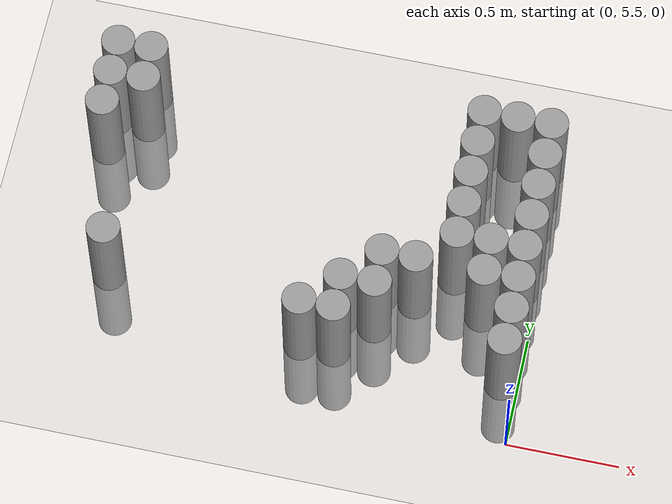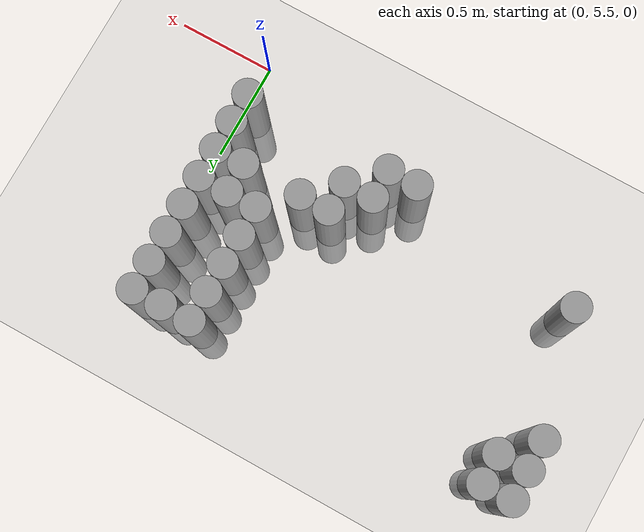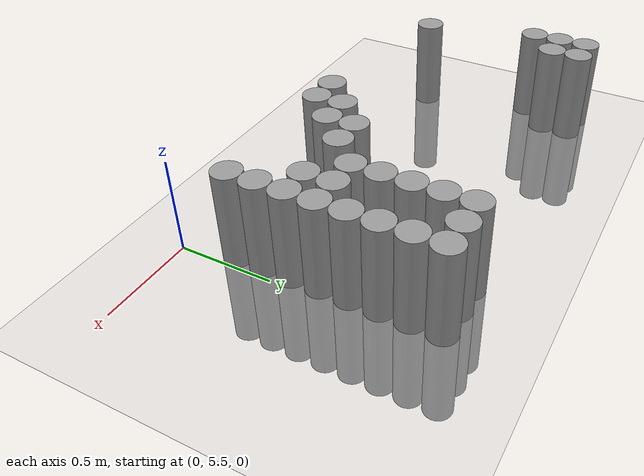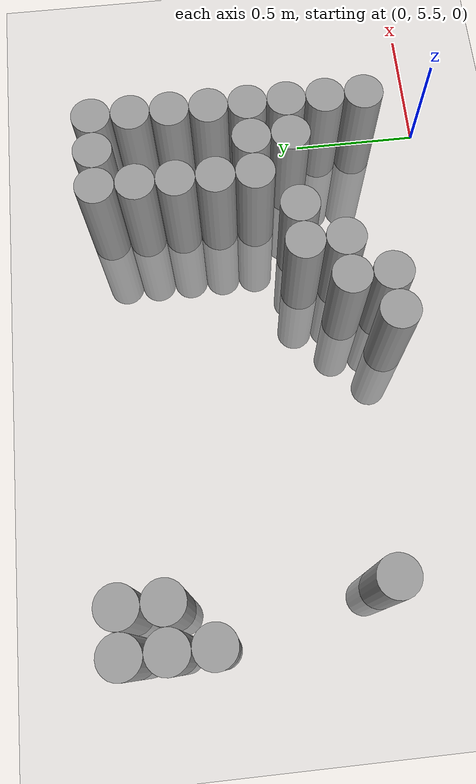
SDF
<sdf version="1.6">
 <world name="default">
  <model name="ground_plane">
   <static>1</static>
   <static>1</static>
   <link name="link">
    <collision name="collision">
     <geometry><plane><normal>0 0 1</normal><size>100 100</size></plane></geometry>
     <surface><friction><ode><mu>100</mu><mu2>50</mu2></ode></friction></surface>
    </collision>
    <visual name="visual">
     <cast_shadows>0</cast_shadows>
     <geometry><plane><normal>0 0 1</normal><size>100 100</size></plane></geometry>
     <material>
      <script><uri>file://media/materials/scripts/gazebo.material</uri><name>Gazebo/Grey</name></script>
     </material>
    </visual>
   </link>
  </model>
  <model name="unit_cylinder_161">
   <static>1</static>
   <pose>-2.025000 6.525000 0.000000 0.000000 0.000000 0.000000</pose>
   <link name="link">
    <inertial>
     <mass>1</mass>
     <inertia><ixx>0.145833</ixx><ixy>0</ixy><ixz>0</ixz><iyy>0.145833</iyy><iyz>0</iyz><izz>0.125</izz></inertia>
    </inertial>
    <collision name="collision">
     <geometry><cylinder><radius>0.075000</radius><length>1</length></cylinder></geometry>
    </collision>
    <visual name="visual">
     <geometry><cylinder><radius>0.075000</radius><length>1</length></cylinder></geometry>
     <material>
      <script><name>Gazebo/Grey</name><uri>file://media/materials/scripts/gazebo.material</uri></script>
     </material>
    </visual>
   </link>
  </model>
  <model name="unit_cylinder_162">
   <static>1</static>
   <pose>-2.025000 6.675000 0.000000 0.000000 0.000000 0.000000</pose>
   <link name="link">
    <inertial>
     <mass>1</mass>
     <inertia><ixx>0.145833</ixx><ixy>0</ixy><ixz>0</ixz><iyy>0.145833</iyy><iyz>0</iyz><izz>0.125</izz></inertia>
    </inertial>
    <collision name="collision">
     <geometry><cylinder><radius>0.075000</radius><length>1</length></cylinder></geometry>
    </collision>
    <visual name="visual">
     <geometry><cylinder><radius>0.075000</radius><length>1</length></cylinder></geometry>
     <material>
      <script><name>Gazebo/Grey</name><uri>file://media/materials/scripts/gazebo.material</uri></script>
     </material>
    </visual>
   </link>
  </model>
  <model name="unit_cylinder_163">
   <static>1</static>
   <pose>-2.025000 6.825000 0.000000 0.000000 0.000000 0.000000</pose>
   <link name="link">
    <inertial>
     <mass>1</mass>
     <inertia><ixx>0.145833</ixx><ixy>0</ixy><ixz>0</ixz><iyy>0.145833</iyy><iyz>0</iyz><izz>0.125</izz></inertia>
    </inertial>
    <collision name="collision">
     <geometry><cylinder><radius>0.075000</radius><length>1</length></cylinder></geometry>
    </collision>
    <visual name="visual">
     <geometry><cylinder><radius>0.075000</radius><length>1</length></cylinder></geometry>
     <material>
      <script><name>Gazebo/Grey</name><uri>file://media/materials/scripts/gazebo.material</uri></script>
     </material>
    </visual>
   </link>
  </model>
  <model name="unit_cylinder_166">
   <static>1</static>
   <pose>-1.875000 5.925000 0.000000 0.000000 0.000000 0.000000</pose>
   <link name="link">
    <inertial>
     <mass>1</mass>
     <inertia><ixx>0.145833</ixx><ixy>0</ixy><ixz>0</ixz><iyy>0.145833</iyy><iyz>0</iyz><izz>0.125</izz></inertia>
    </inertial>
    <collision name="collision">
     <geometry><cylinder><radius>0.075000</radius><length>1</length></cylinder></geometry>
    </collision>
    <visual name="visual">
     <geometry><cylinder><radius>0.075000</radius><length>1</length></cylinder></geometry>
     <material>
      <script><name>Gazebo/Grey</name><uri>file://media/materials/scripts/gazebo.material</uri></script>
     </material>
    </visual>
   </link>
  </model>
  <model name="unit_cylinder_167">
   <static>1</static>
   <pose>-1.875000 6.675000 0.000000 0.000000 0.000000 0.000000</pose>
   <link name="link">
    <inertial>
     <mass>1</mass>
     <inertia><ixx>0.145833</ixx><ixy>0</ixy><ixz>0</ixz><iyy>0.145833</iyy><iyz>0</iyz><izz>0.125</izz></inertia>
    </inertial>
    <collision name="collision">
     <geometry><cylinder><radius>0.075000</radius><length>1</length></cylinder></geometry>
    </collision>
    <visual name="visual">
     <geometry><cylinder><radius>0.075000</radius><length>1</length></cylinder></geometry>
     <material>
      <script><name>Gazebo/Grey</name><uri>file://media/materials/scripts/gazebo.material</uri></script>
     </material>
    </visual>
   </link>
  </model>
  <model name="unit_cylinder_168">
   <static>1</static>
   <pose>-1.875000 6.825000 0.000000 0.000000 0.000000 0.000000</pose>
   <link name="link">
    <inertial>
     <mass>1</mass>
     <inertia><ixx>0.145833</ixx><ixy>0</ixy><ixz>0</ixz><iyy>0.145833</iyy><iyz>0</iyz><izz>0.125</izz></inertia>
    </inertial>
    <collision name="collision">
     <geometry><cylinder><radius>0.075000</radius><length>1</length></cylinder></geometry>
    </collision>
    <visual name="visual">
     <geometry><cylinder><radius>0.075000</radius><length>1</length></cylinder></geometry>
     <material>
      <script><name>Gazebo/Grey</name><uri>file://media/materials/scripts/gazebo.material</uri></script>
     </material>
    </visual>
   </link>
  </model>
  <model name="unit_cylinder_173">
   <static>1</static>
   <pose>-0.975000 5.775000 0.000000 0.000000 0.000000 0.000000</pose>
   <link name="link">
    <inertial>
     <mass>1</mass>
     <inertia><ixx>0.145833</ixx><ixy>0</ixy><ixz>0</ixz><iyy>0.145833</iyy><iyz>0</iyz><izz>0.125</izz></inertia>
    </inertial>
    <collision name="collision">
     <geometry><cylinder><radius>0.075000</radius><length>1</length></cylinder></geometry>
    </collision>
    <visual name="visual">
     <geometry><cylinder><radius>0.075000</radius><length>1</length></cylinder></geometry>
     <material>
      <script><name>Gazebo/Grey</name><uri>file://media/materials/scripts/gazebo.material</uri></script>
     </material>
    </visual>
   </link>
  </model>
  <model name="unit_cylinder_177">
   <static>1</static>
   <pose>-0.825000 5.775000 0.000000 0.000000 0.000000 0.000000</pose>
   <link name="link">
    <inertial>
     <mass>1</mass>
     <inertia><ixx>0.145833</ixx><ixy>0</ixy><ixz>0</ixz><iyy>0.145833</iyy><iyz>0</iyz><izz>0.125</izz></inertia>
    </inertial>
    <collision name="collision">
     <geometry><cylinder><radius>0.075000</radius><length>1</length></cylinder></geometry>
    </collision>
    <visual name="visual">
     <geometry><cylinder><radius>0.075000</radius><length>1</length></cylinder></geometry>
     <material>
      <script><name>Gazebo/Grey</name><uri>file://media/materials/scripts/gazebo.material</uri></script>
     </material>
    </visual>
   </link>
  </model>
  <model name="unit_cylinder_178">
   <static>1</static>
   <pose>-0.825000 5.925000 0.000000 0.000000 0.000000 0.000000</pose>
   <link name="link">
    <inertial>
     <mass>1</mass>
     <inertia><ixx>0.145833</ixx><ixy>0</ixy><ixz>0</ixz><iyy>0.145833</iyy><iyz>0</iyz><izz>0.125</izz></inertia>
    </inertial>
    <collision name="collision">
     <geometry><cylinder><radius>0.075000</radius><length>1</length></cylinder></geometry>
    </collision>
    <visual name="visual">
     <geometry><cylinder><radius>0.075000</radius><length>1</length></cylinder></geometry>
     <material>
      <script><name>Gazebo/Grey</name><uri>file://media/materials/scripts/gazebo.material</uri></script>
     </material>
    </visual>
   </link>
  </model>
  <model name="unit_cylinder_180">
   <static>1</static>
   <pose>-0.675000 5.925000 0.000000 0.000000 0.000000 0.000000</pose>
   <link name="link">
    <inertial>
     <mass>1</mass>
     <inertia><ixx>0.145833</ixx><ixy>0</ixy><ixz>0</ixz><iyy>0.145833</iyy><iyz>0</iyz><izz>0.125</izz></inertia>
    </inertial>
    <collision name="collision">
     <geometry><cylinder><radius>0.075000</radius><length>1</length></cylinder></geometry>
    </collision>
    <visual name="visual">
     <geometry><cylinder><radius>0.075000</radius><length>1</length></cylinder></geometry>
     <material>
      <script><name>Gazebo/Grey</name><uri>file://media/materials/scripts/gazebo.material</uri></script>
     </material>
    </visual>
   </link>
  </model>
  <model name="unit_cylinder_181">
   <static>1</static>
   <pose>-0.675000 6.075000 0.000000 0.000000 0.000000 0.000000</pose>
   <link name="link">
    <inertial>
     <mass>1</mass>
     <inertia><ixx>0.145833</ixx><ixy>0</ixy><ixz>0</ixz><iyy>0.145833</iyy><iyz>0</iyz><izz>0.125</izz></inertia>
    </inertial>
    <collision name="collision">
     <geometry><cylinder><radius>0.075000</radius><length>1</length></cylinder></geometry>
    </collision>
    <visual name="visual">
     <geometry><cylinder><radius>0.075000</radius><length>1</length></cylinder></geometry>
     <material>
      <script><name>Gazebo/Grey</name><uri>file://media/materials/scripts/gazebo.material</uri></script>
     </material>
    </visual>
   </link>
  </model>
  <model name="unit_cylinder_182">
   <static>1</static>
   <pose>-0.525000 6.075000 0.000000 0.000000 0.000000 0.000000</pose>
   <link name="link">
    <inertial>
     <mass>1</mass>
     <inertia><ixx>0.145833</ixx><ixy>0</ixy><ixz>0</ixz><iyy>0.145833</iyy><iyz>0</iyz><izz>0.125</izz></inertia>
    </inertial>
    <collision name="collision">
     <geometry><cylinder><radius>0.075000</radius><length>1</length></cylinder></geometry>
    </collision>
    <visual name="visual">
     <geometry><cylinder><radius>0.075000</radius><length>1</length></cylinder></geometry>
     <material>
      <script><name>Gazebo/Grey</name><uri>file://media/materials/scripts/gazebo.material</uri></script>
     </material>
    </visual>
   </link>
  </model>
  <model name="unit_cylinder_183">
   <static>1</static>
   <pose>-0.375000 6.225000 0.000000 0.000000 0.000000 0.000000</pose>
   <link name="link">
    <inertial>
     <mass>1</mass>
     <inertia><ixx>0.145833</ixx><ixy>0</ixy><ixz>0</ixz><iyy>0.145833</iyy><iyz>0</iyz><izz>0.125</izz></inertia>
    </inertial>
    <collision name="collision">
     <geometry><cylinder><radius>0.075000</radius><length>1</length></cylinder></geometry>
    </collision>
    <visual name="visual">
     <geometry><cylinder><radius>0.075000</radius><length>1</length></cylinder></geometry>
     <material>
      <script><name>Gazebo/Grey</name><uri>file://media/materials/scripts/gazebo.material</uri></script>
     </material>
    </visual>
   </link>
  </model>
  <model name="unit_cylinder_184">
   <static>1</static>
   <pose>-0.375000 6.375000 0.000000 0.000000 0.000000 0.000000</pose>
   <link name="link">
    <inertial>
     <mass>1</mass>
     <inertia><ixx>0.145833</ixx><ixy>0</ixy><ixz>0</ixz><iyy>0.145833</iyy><iyz>0</iyz><izz>0.125</izz></inertia>
    </inertial>
    <collision name="collision">
     <geometry><cylinder><radius>0.075000</radius><length>1</length></cylinder></geometry>
    </collision>
    <visual name="visual">
     <geometry><cylinder><radius>0.075000</radius><length>1</length></cylinder></geometry>
     <material>
      <script><name>Gazebo/Grey</name><uri>file://media/materials/scripts/gazebo.material</uri></script>
     </material>
    </visual>
   </link>
  </model>
  <model name="unit_cylinder_185">
   <static>1</static>
   <pose>-0.375000 6.525000 0.000000 0.000000 0.000000 0.000000</pose>
   <link name="link">
    <inertial>
     <mass>1</mass>
     <inertia><ixx>0.145833</ixx><ixy>0</ixy><ixz>0</ixz><iyy>0.145833</iyy><iyz>0</iyz><izz>0.125</izz></inertia>
    </inertial>
    <collision name="collision">
     <geometry><cylinder><radius>0.075000</radius><length>1</length></cylinder></geometry>
    </collision>
    <visual name="visual">
     <geometry><cylinder><radius>0.075000</radius><length>1</length></cylinder></geometry>
     <material>
      <script><name>Gazebo/Grey</name><uri>file://media/materials/scripts/gazebo.material</uri></script>
     </material>
    </visual>
   </link>
  </model>
  <model name="unit_cylinder_186">
   <static>1</static>
   <pose>-0.375000 6.675000 0.000000 0.000000 0.000000 0.000000</pose>
   <link name="link">
    <inertial>
     <mass>1</mass>
     <inertia><ixx>0.145833</ixx><ixy>0</ixy><ixz>0</ixz><iyy>0.145833</iyy><iyz>0</iyz><izz>0.125</izz></inertia>
    </inertial>
    <collision name="collision">
     <geometry><cylinder><radius>0.075000</radius><length>1</length></cylinder></geometry>
    </collision>
    <visual name="visual">
     <geometry><cylinder><radius>0.075000</radius><length>1</length></cylinder></geometry>
     <material>
      <script><name>Gazebo/Grey</name><uri>file://media/materials/scripts/gazebo.material</uri></script>
     </material>
    </visual>
   </link>
  </model>
  <model name="unit_cylinder_187">
   <static>1</static>
   <pose>-0.375000 6.825000 0.000000 0.000000 0.000000 0.000000</pose>
   <link name="link">
    <inertial>
     <mass>1</mass>
     <inertia><ixx>0.145833</ixx><ixy>0</ixy><ixz>0</ixz><iyy>0.145833</iyy><iyz>0</iyz><izz>0.125</izz></inertia>
    </inertial>
    <collision name="collision">
     <geometry><cylinder><radius>0.075000</radius><length>1</length></cylinder></geometry>
    </collision>
    <visual name="visual">
     <geometry><cylinder><radius>0.075000</radius><length>1</length></cylinder></geometry>
     <material>
      <script><name>Gazebo/Grey</name><uri>file://media/materials/scripts/gazebo.material</uri></script>
     </material>
    </visual>
   </link>
  </model>
  <model name="unit_cylinder_191">
   <static>1</static>
   <pose>-0.225000 6.075000 0.000000 0.000000 0.000000 0.000000</pose>
   <link name="link">
    <inertial>
     <mass>1</mass>
     <inertia><ixx>0.145833</ixx><ixy>0</ixy><ixz>0</ixz><iyy>0.145833</iyy><iyz>0</iyz><izz>0.125</izz></inertia>
    </inertial>
    <collision name="collision">
     <geometry><cylinder><radius>0.075000</radius><length>1</length></cylinder></geometry>
    </collision>
    <visual name="visual">
     <geometry><cylinder><radius>0.075000</radius><length>1</length></cylinder></geometry>
     <material>
      <script><name>Gazebo/Grey</name><uri>file://media/materials/scripts/gazebo.material</uri></script>
     </material>
    </visual>
   </link>
  </model>
  <model name="unit_cylinder_192">
   <static>1</static>
   <pose>-0.225000 6.225000 0.000000 0.000000 0.000000 0.000000</pose>
   <link name="link">
    <inertial>
     <mass>1</mass>
     <inertia><ixx>0.145833</ixx><ixy>0</ixy><ixz>0</ixz><iyy>0.145833</iyy><iyz>0</iyz><izz>0.125</izz></inertia>
    </inertial>
    <collision name="collision">
     <geometry><cylinder><radius>0.075000</radius><length>1</length></cylinder></geometry>
    </collision>
    <visual name="visual">
     <geometry><cylinder><radius>0.075000</radius><length>1</length></cylinder></geometry>
     <material>
      <script><name>Gazebo/Grey</name><uri>file://media/materials/scripts/gazebo.material</uri></script>
     </material>
    </visual>
   </link>
  </model>
  <model name="unit_cylinder_193">
   <static>1</static>
   <pose>-0.225000 6.825000 0.000000 0.000000 0.000000 0.000000</pose>
   <link name="link">
    <inertial>
     <mass>1</mass>
     <inertia><ixx>0.145833</ixx><ixy>0</ixy><ixz>0</ixz><iyy>0.145833</iyy><iyz>0</iyz><izz>0.125</izz></inertia>
    </inertial>
    <collision name="collision">
     <geometry><cylinder><radius>0.075000</radius><length>1</length></cylinder></geometry>
    </collision>
    <visual name="visual">
     <geometry><cylinder><radius>0.075000</radius><length>1</length></cylinder></geometry>
     <material>
      <script><name>Gazebo/Grey</name><uri>file://media/materials/scripts/gazebo.material</uri></script>
     </material>
    </visual>
   </link>
  </model>
  <model name="unit_cylinder_200">
   <static>1</static>
   <pose>-0.075000 5.775000 0.000000 0.000000 0.000000 0.000000</pose>
   <link name="link">
    <inertial>
     <mass>1</mass>
     <inertia><ixx>0.145833</ixx><ixy>0</ixy><ixz>0</ixz><iyy>0.145833</iyy><iyz>0</iyz><izz>0.125</izz></inertia>
    </inertial>
    <collision name="collision">
     <geometry><cylinder><radius>0.075000</radius><length>1</length></cylinder></geometry>
    </collision>
    <visual name="visual">
     <geometry><cylinder><radius>0.075000</radius><length>1</length></cylinder></geometry>
     <material>
      <script><name>Gazebo/Grey</name><uri>file://media/materials/scripts/gazebo.material</uri></script>
     </material>
    </visual>
   </link>
  </model>
  <model name="unit_cylinder_201">
   <static>1</static>
   <pose>-0.075000 5.925000 0.000000 0.000000 0.000000 0.000000</pose>
   <link name="link">
    <inertial>
     <mass>1</mass>
     <inertia><ixx>0.145833</ixx><ixy>0</ixy><ixz>0</ixz><iyy>0.145833</iyy><iyz>0</iyz><izz>0.125</izz></inertia>
    </inertial>
    <collision name="collision">
     <geometry><cylinder><radius>0.075000</radius><length>1</length></cylinder></geometry>
    </collision>
    <visual name="visual">
     <geometry><cylinder><radius>0.075000</radius><length>1</length></cylinder></geometry>
     <material>
      <script><name>Gazebo/Grey</name><uri>file://media/materials/scripts/gazebo.material</uri></script>
     </material>
    </visual>
   </link>
  </model>
  <model name="unit_cylinder_202">
   <static>1</static>
   <pose>-0.075000 6.075000 0.000000 0.000000 0.000000 0.000000</pose>
   <link name="link">
    <inertial>
     <mass>1</mass>
     <inertia><ixx>0.145833</ixx><ixy>0</ixy><ixz>0</ixz><iyy>0.145833</iyy><iyz>0</iyz><izz>0.125</izz></inertia>
    </inertial>
    <collision name="collision">
     <geometry><cylinder><radius>0.075000</radius><length>1</length></cylinder></geometry>
    </collision>
    <visual name="visual">
     <geometry><cylinder><radius>0.075000</radius><length>1</length></cylinder></geometry>
     <material>
      <script><name>Gazebo/Grey</name><uri>file://media/materials/scripts/gazebo.material</uri></script>
     </material>
    </visual>
   </link>
  </model>
  <model name="unit_cylinder_203">
   <static>1</static>
   <pose>-0.075000 6.225000 0.000000 0.000000 0.000000 0.000000</pose>
   <link name="link">
    <inertial>
     <mass>1</mass>
     <inertia><ixx>0.145833</ixx><ixy>0</ixy><ixz>0</ixz><iyy>0.145833</iyy><iyz>0</iyz><izz>0.125</izz></inertia>
    </inertial>
    <collision name="collision">
     <geometry><cylinder><radius>0.075000</radius><length>1</length></cylinder></geometry>
    </collision>
    <visual name="visual">
     <geometry><cylinder><radius>0.075000</radius><length>1</length></cylinder></geometry>
     <material>
      <script><name>Gazebo/Grey</name><uri>file://media/materials/scripts/gazebo.material</uri></script>
     </material>
    </visual>
   </link>
  </model>
  <model name="unit_cylinder_204">
   <static>1</static>
   <pose>-0.075000 6.375000 0.000000 0.000000 0.000000 0.000000</pose>
   <link name="link">
    <inertial>
     <mass>1</mass>
     <inertia><ixx>0.145833</ixx><ixy>0</ixy><ixz>0</ixz><iyy>0.145833</iyy><iyz>0</iyz><izz>0.125</izz></inertia>
    </inertial>
    <collision name="collision">
     <geometry><cylinder><radius>0.075000</radius><length>1</length></cylinder></geometry>
    </collision>
    <visual name="visual">
     <geometry><cylinder><radius>0.075000</radius><length>1</length></cylinder></geometry>
     <material>
      <script><name>Gazebo/Grey</name><uri>file://media/materials/scripts/gazebo.material</uri></script>
     </material>
    </visual>
   </link>
  </model>
  <model name="unit_cylinder_205">
   <static>1</static>
   <pose>-0.075000 6.525000 0.000000 0.000000 0.000000 0.000000</pose>
   <link name="link">
    <inertial>
     <mass>1</mass>
     <inertia><ixx>0.145833</ixx><ixy>0</ixy><ixz>0</ixz><iyy>0.145833</iyy><iyz>0</iyz><izz>0.125</izz></inertia>
    </inertial>
    <collision name="collision">
     <geometry><cylinder><radius>0.075000</radius><length>1</length></cylinder></geometry>
    </collision>
    <visual name="visual">
     <geometry><cylinder><radius>0.075000</radius><length>1</length></cylinder></geometry>
     <material>
      <script><name>Gazebo/Grey</name><uri>file://media/materials/scripts/gazebo.material</uri></script>
     </material>
    </visual>
   </link>
  </model>
  <model name="unit_cylinder_206">
   <static>1</static>
   <pose>-0.075000 6.675000 0.000000 0.000000 0.000000 0.000000</pose>
   <link name="link">
    <inertial>
     <mass>1</mass>
     <inertia><ixx>0.145833</ixx><ixy>0</ixy><ixz>0</ixz><iyy>0.145833</iyy><iyz>0</iyz><izz>0.125</izz></inertia>
    </inertial>
    <collision name="collision">
     <geometry><cylinder><radius>0.075000</radius><length>1</length></cylinder></geometry>
    </collision>
    <visual name="visual">
     <geometry><cylinder><radius>0.075000</radius><length>1</length></cylinder></geometry>
     <material>
      <script><name>Gazebo/Grey</name><uri>file://media/materials/scripts/gazebo.material</uri></script>
     </material>
    </visual>
   </link>
  </model>
  <model name="unit_cylinder_207">
   <static>1</static>
   <pose>-0.075000 6.825000 0.000000 0.000000 0.000000 0.000000</pose>
   <link name="link">
    <inertial>
     <mass>1</mass>
     <inertia><ixx>0.145833</ixx><ixy>0</ixy><ixz>0</ixz><iyy>0.145833</iyy><iyz>0</iyz><izz>0.125</izz></inertia>
    </inertial>
    <collision name="collision">
     <geometry><cylinder><radius>0.075000</radius><length>1</length></cylinder></geometry>
    </collision>
    <visual name="visual">
     <geometry><cylinder><radius>0.075000</radius><length>1</length></cylinder></geometry>
     <material>
      <script><name>Gazebo/Grey</name><uri>file://media/materials/scripts/gazebo.material</uri></script>
     </material>
    </visual>
   </link>
  </model>
 </world>
</sdf>
